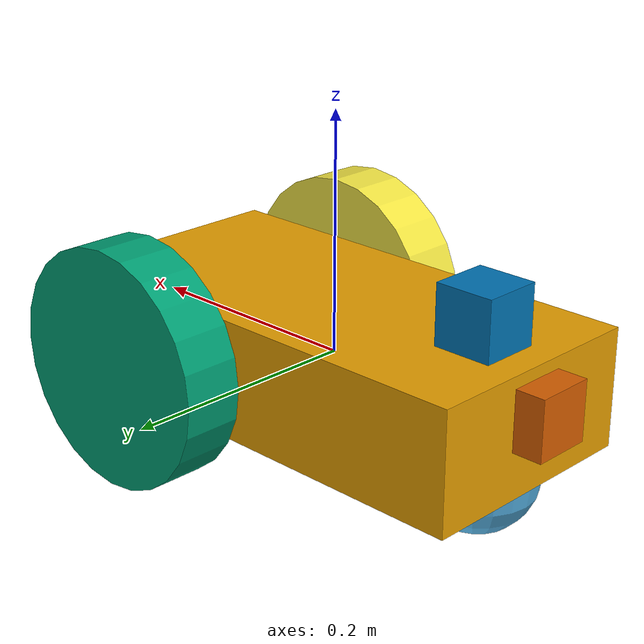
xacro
<?xml version='1.0'?>

<robot name='my_robot' xmlns:xacro="http://www.ros.org/wiki/xacro">

    <xacro:include filename="$(find simulation)/models/robot/robot.gazebo.xacro" />

    <link name='chassi'>
        <inertial>
            <mass value="1"/>
            <origin rpy="0 0 0" xyz="0 0 0"/>
            <inertia ixx="1" ixy="0.0" ixz="0.0" iyy="1" iyz="0.0" izz="1"/>
        </inertial>

        <collision name= 'collision_chassi'>
            <origin rpy="0 0 0" xyz="0 0 0"/>
            <geometry>
                <box size='0.4 0.2 0.1'/>
            </geometry>
        </collision>

        <visual name='visual_chassi'>
            <origin rpy="0 0 0" xyz="0 0 0"/>
            <geometry>
                <box size='0.4 0.2 0.1'/>
            </geometry>
        </visual>
    </link>

    <link name='caster'>
        <inertial>
            <mass value="0.5"/>
            <origin rpy="0 0 0" xyz="0 0 0"/>
            <inertia ixx="1" ixy="0.0" ixz="0.0" iyy="1" iyz="0.0" izz="1"/>
        </inertial>

        <collision name= 'collision_caster'>
            <origin rpy="0 0 0" xyz="0 0 0"/>
            <geometry>
                <sphere radius='0.05'/>
            </geometry>
        </collision>

        <visual name='visual_caster'>
            <origin rpy="0 0 0" xyz="0 0 0"/>
            <geometry>
                <sphere radius='0.05'/>
            </geometry>
        </visual>
    </link>

    <link name='left_wheel'>
        <inertial>
            <mass value="0.5"/>
            <origin rpy="0 0 0" xyz="0 0 0"/>
            <inertia ixx="1" ixy="0.0" ixz="0.0" iyy="1" iyz="0.0" izz="1"/>
        </inertial>

        <collision name= 'collision_left_wheel'>
            <origin rpy="0 0 0" xyz="0 0 0"/>
            <geometry>
                <cylinder radius="0.1" length="0.05"/>
            </geometry>
        </collision>

        <visual name='visual_left_wheel'>
            <origin rpy="0 0 0" xyz="0 0 0"/>
            <geometry>
                <cylinder radius="0.1" length="0.05"/>
            </geometry>
        </visual>
    </link>

    <link name='right_wheel'>
        <inertial>
            <mass value="0.5"/>
            <origin rpy="0 0 0" xyz="0 0 0"/>
            <inertia ixx="1" ixy="0.0" ixz="0.0" iyy="1" iyz="0.0" izz="1"/>
        </inertial>

        <collision name= 'collision_right_wheel'>
            <origin rpy="0 0 0" xyz="0 0 0"/>
            <geometry>
                <cylinder radius="0.1" length="0.05"/>
            </geometry>
        </collision>

        <visual name='visual_right_wheel'>
            <origin rpy="0 0 0" xyz="0 0 0"/>
            <geometry>
                <cylinder radius="0.1" length="0.05"/>
            </geometry>
        </visual>
    </link>

    <link name='camera1'>
        <inertial>
            <mass value="0.01"/>
            <origin rpy="0 0 0" xyz="0 0 0"/>
            <inertia ixx="1" ixy="0.0" ixz="0.0" iyy="1" iyz="0.0" izz="1"/>
        </inertial>

        <collision name= 'collision_camera1'>
            <origin rpy="0 0 0" xyz="0 0 0"/>
            <geometry>
                <box size='0.05 0.05 0.05'/>
            </geometry>
        </collision>

        <visual name='visual_camera1'>
            <origin rpy="0 0 0" xyz="0 0 0"/>
            <geometry>
                <box size='0.05 0.05 0.05'/>
            </geometry>
        </visual>
    </link>

    <link name='laser1'>
        <inertial>
            <mass value="0.01"/>
            <origin rpy="0 0 0" xyz="0 0 0"/>
            <inertia ixx="1" ixy="0.0" ixz="0.0" iyy="1" iyz="0.0" izz="1"/>
        </inertial>

        <collision name= 'collision_laser1'>
            <origin rpy="0 0 0" xyz="0 0 0"/>
            <geometry>
                <box size='0.05 0.05 0.05'/>
            </geometry>
        </collision>

        <visual name='visual_laser1'>
            <origin rpy="0 0 0" xyz="0 0 0"/>
            <geometry>
                <box size='0.05 0.05 0.05'/>
            </geometry>
        </visual>
    </link>

<!--==================== Joints ====================-->
    <joint name="joint_caster" type="fixed">
        <parent link="chassi"/>
        <child link="caster"/>
        <origin rpy="0 0 0" xyz="-0.15 0 -0.05"/>
    </joint>

    <joint name="joint_left_wheel" type="revolute">
        <parent link="chassi"/>
        <child link="left_wheel"/>
        <origin rpy="0 1.5707 1.5707" xyz="0.1 0.13 0"/>
        <axis xyz="0 0 1"/>
        <limit effort="-1.0" lower="-1e+16" upper="1e+16" velocity="-1.0"/>
    </joint>

    <joint name="joint_right_wheel" type="revolute">
        <parent link="chassi"/>
        <child link="right_wheel"/>
        <origin rpy="0 1.5707 1.5707" xyz="0.1 -0.13 0"/>
        <axis xyz="0 0 1"/>
        <limit effort="-1.0" lower="-1e+16" upper="1e+16" velocity="-1.0"/>
    </joint>

    <joint name="joint_camera1" type="fixed">
        <parent link="chassi"/>
        <child link="camera1"/>
        <origin rpy="0 0 3.1415" xyz="-0.15 0 0.075"/>
    </joint>

    <joint name="joint_laser1" type="fixed">
        <parent link="chassi"/>
        <child link="laser1"/>
        <origin rpy="0 0 3.1415" xyz="-0.2 0 0.015"/>
    </joint>
</robot>
